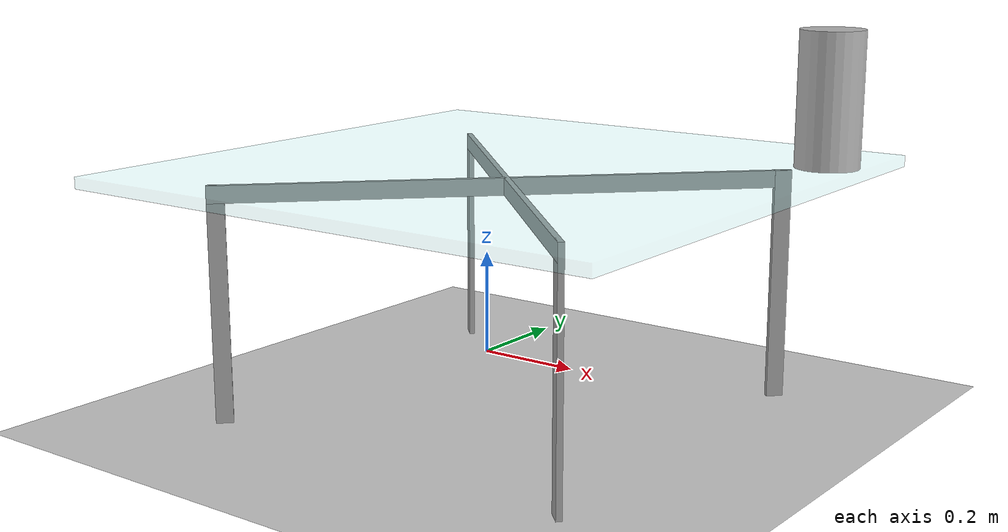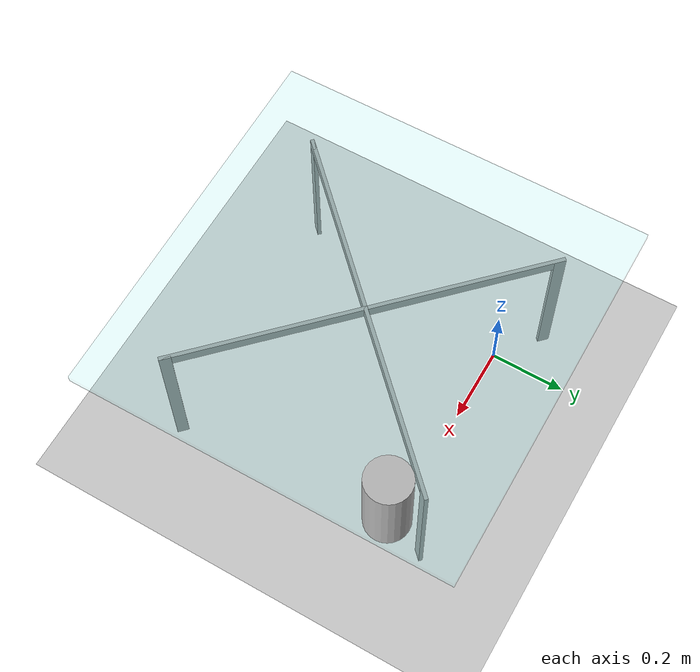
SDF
<sdf version="1.6">
 <world name="default">
  <model name="ground_plane">
   <static>1</static>
   <link name="link">
    <collision name="collision">
     <geometry><plane><normal>0 0 1</normal><size>100 100</size></plane></geometry>
     <surface><friction><ode><mu>100</mu><mu2>50</mu2></ode></friction></surface>
    </collision>
    <visual name="visual">
     <cast_shadows>0</cast_shadows>
     <geometry><plane><normal>0 0 1</normal><size>100 100</size></plane></geometry>
     <material>
      <script><uri>file://media/materials/scripts/gazebo.material</uri><name>Gazebo/Grey</name></script>
     </material>
    </visual>
   </link>
  </model>
  <model name="coffee_table">
   <link name="link_1">
    <pose>1.25379 -1.27559 0.12 0 -0 0.785398</pose>
    <inertial>
     <mass>1</mass>
     <inertia>
      <ixx>0.166667</ixx>
      <ixy>0</ixy>
      <ixz>0</ixz>
      <iyy>0.166667</iyy>
      <iyz>0</iyz>
      <izz>0.166667</izz>
     </inertia>
    </inertial>
    <visual name="visual">
     <geometry><box><size>0.01 0.03 0.41</size></box></geometry>
     <material>
      <lighting>1</lighting>
      <script><uri>file://media/materials/scripts/gazebo.material</uri><name>Gazebo/Grey</name></script>
      <shader type="pixel"><normal_map>__default__</normal_map></shader>
      <ambient>0.75 0.75 0.75 1</ambient>
      <diffuse>0.7 0.7 0.7 1</diffuse>
      <specular>0.01 0.01 0.01 1</specular>
      <emissive>0 0 0 1</emissive>
     </material>
    </visual>
    <collision name="collision">
     <geometry><box><size>0.01 0.03 0.41</size></box></geometry>
     <surface>
      <friction>
       <ode><mu>1</mu><mu2>1</mu2><fdir1>0 0 0</fdir1><slip1>0</slip1><slip2>0</slip2></ode>
       <torsional>
        <coefficient>1</coefficient>
        <patch_radius>0</patch_radius>
        <surface_radius>0</surface_radius>
        <use_patch_radius>1</use_patch_radius>
        <ode><slip>0</slip></ode>
       </torsional>
      </friction>
      <bounce><restitution_coefficient>0</restitution_coefficient><threshold>1e+06</threshold></bounce>
      <contact>
       <collide_without_contact>0</collide_without_contact>
       <collide_without_contact_bitmask>1</collide_without_contact_bitmask>
       <collide_bitmask>1</collide_bitmask>
       <ode>
        <soft_cfm>0</soft_cfm>
        <soft_erp>0.2</soft_erp>
        <kp>1e+13</kp>
        <kd>1</kd>
        <max_vel>0.01</max_vel>
        <min_depth>0</min_depth>
       </ode>
       <bullet>
        <split_impulse>1</split_impulse>
        <split_impulse_penetration_threshold>-0.01</split_impulse_penetration_threshold>
        <soft_cfm>0</soft_cfm>
        <soft_erp>0.2</soft_erp>
        <kp>1e+13</kp>
        <kd>1</kd>
       </bullet>
      </contact>
     </surface>
    </collision>
   </link>
   <link name="link_1_clone">
    <pose>0.567893 -0.589699 0.12 0 -0 0.785398</pose>
    <inertial>
     <mass>1</mass>
     <inertia>
      <ixx>0.166667</ixx>
      <ixy>0</ixy>
      <ixz>0</ixz>
      <iyy>0.166667</iyy>
      <iyz>0</iyz>
      <izz>0.166667</izz>
     </inertia>
    </inertial>
    <visual name="visual">
     <geometry><box><size>0.01 0.03 0.41</size></box></geometry>
     <material>
      <lighting>1</lighting>
      <script><uri>file://media/materials/scripts/gazebo.material</uri><name>Gazebo/Grey</name></script>
      <shader type="pixel"><normal_map>__default__</normal_map></shader>
      <ambient>0.75 0.75 0.75 1</ambient>
      <diffuse>0.7 0.7 0.7 1</diffuse>
      <specular>0.01 0.01 0.01 1</specular>
      <emissive>0 0 0 1</emissive>
     </material>
    </visual>
    <collision name="collision">
     <geometry><box><size>0.01 0.03 0.41</size></box></geometry>
     <surface>
      <friction>
       <ode><mu>1</mu><mu2>1</mu2><fdir1>0 0 0</fdir1><slip1>0</slip1><slip2>0</slip2></ode>
       <torsional>
        <coefficient>1</coefficient>
        <patch_radius>0</patch_radius>
        <surface_radius>0</surface_radius>
        <use_patch_radius>1</use_patch_radius>
        <ode><slip>0</slip></ode>
       </torsional>
      </friction>
      <bounce><restitution_coefficient>0</restitution_coefficient><threshold>1e+06</threshold></bounce>
      <contact>
       <collide_without_contact>0</collide_without_contact>
       <collide_without_contact_bitmask>1</collide_without_contact_bitmask>
       <collide_bitmask>1</collide_bitmask>
       <ode>
        <soft_cfm>0</soft_cfm>
        <soft_erp>0.2</soft_erp>
        <kp>1e+13</kp>
        <kd>1</kd>
        <max_vel>0.01</max_vel>
        <min_depth>0</min_depth>
       </ode>
       <bullet>
        <split_impulse>1</split_impulse>
        <split_impulse_penetration_threshold>-0.01</split_impulse_penetration_threshold>
        <soft_cfm>0</soft_cfm>
        <soft_erp>0.2</soft_erp>
        <kp>1e+13</kp>
        <kd>1</kd>
       </bullet>
      </contact>
     </surface>
    </collision>
   </link>
   <link name="link_1_clone_0">
    <pose>1.25379 -0.589699 0.12 0 0 -0.785398</pose>
    <inertial>
     <mass>1</mass>
     <inertia>
      <ixx>0.166667</ixx>
      <ixy>0</ixy>
      <ixz>0</ixz>
      <iyy>0.166667</iyy>
      <iyz>0</iyz>
      <izz>0.166667</izz>
     </inertia>
    </inertial>
    <visual name="visual">
     <geometry><box><size>0.01 0.03 0.41</size></box></geometry>
     <material>
      <lighting>1</lighting>
      <script><uri>file://media/materials/scripts/gazebo.material</uri><name>Gazebo/Grey</name></script>
      <shader type="pixel"><normal_map>__default__</normal_map></shader>
      <ambient>0.75 0.75 0.75 1</ambient>
      <diffuse>0.7 0.7 0.7 1</diffuse>
      <specular>0.01 0.01 0.01 1</specular>
      <emissive>0 0 0 1</emissive>
     </material>
    </visual>
    <collision name="collision">
     <geometry><box><size>0.01 0.03 0.41</size></box></geometry>
     <surface>
      <friction>
       <ode><mu>1</mu><mu2>1</mu2><fdir1>0 0 0</fdir1><slip1>0</slip1><slip2>0</slip2></ode>
       <torsional>
        <coefficient>1</coefficient>
        <patch_radius>0</patch_radius>
        <surface_radius>0</surface_radius>
        <use_patch_radius>1</use_patch_radius>
        <ode><slip>0</slip></ode>
       </torsional>
      </friction>
      <bounce><restitution_coefficient>0</restitution_coefficient><threshold>1e+06</threshold></bounce>
      <contact>
       <collide_without_contact>0</collide_without_contact>
       <collide_without_contact_bitmask>1</collide_without_contact_bitmask>
       <collide_bitmask>1</collide_bitmask>
       <ode>
        <soft_cfm>0</soft_cfm>
        <soft_erp>0.2</soft_erp>
        <kp>1e+13</kp>
        <kd>1</kd>
        <max_vel>0.01</max_vel>
        <min_depth>0</min_depth>
       </ode>
       <bullet>
        <split_impulse>1</split_impulse>
        <split_impulse_penetration_threshold>-0.01</split_impulse_penetration_threshold>
        <soft_cfm>0</soft_cfm>
        <soft_erp>0.2</soft_erp>
        <kp>1e+13</kp>
        <kd>1</kd>
       </bullet>
      </contact>
     </surface>
    </collision>
   </link>
   <link name="link_1_clone_0_clone">
    <pose>0.567893 -1.27559 0.12 0 0 -0.785398</pose>
    <inertial>
     <mass>1</mass>
     <inertia>
      <ixx>0.166667</ixx>
      <ixy>0</ixy>
      <ixz>0</ixz>
      <iyy>0.166667</iyy>
      <iyz>0</iyz>
      <izz>0.166667</izz>
     </inertia>
    </inertial>
    <visual name="visual">
     <geometry><box><size>0.01 0.03 0.41</size></box></geometry>
     <material>
      <lighting>1</lighting>
      <script><uri>file://media/materials/scripts/gazebo.material</uri><name>Gazebo/Grey</name></script>
      <shader type="pixel"><normal_map>__default__</normal_map></shader>
      <ambient>0.75 0.75 0.75 1</ambient>
      <diffuse>0.7 0.7 0.7 1</diffuse>
      <specular>0.01 0.01 0.01 1</specular>
      <emissive>0 0 0 1</emissive>
     </material>
    </visual>
    <collision name="collision">
     <geometry><box><size>0.01 0.03 0.41</size></box></geometry>
     <surface>
      <friction>
       <ode><mu>1</mu><mu2>1</mu2><fdir1>0 0 0</fdir1><slip1>0</slip1><slip2>0</slip2></ode>
       <torsional>
        <coefficient>1</coefficient>
        <patch_radius>0</patch_radius>
        <surface_radius>0</surface_radius>
        <use_patch_radius>1</use_patch_radius>
        <ode><slip>0</slip></ode>
       </torsional>
      </friction>
      <bounce><restitution_coefficient>0</restitution_coefficient><threshold>1e+06</threshold></bounce>
      <contact>
       <collide_without_contact>0</collide_without_contact>
       <collide_without_contact_bitmask>1</collide_without_contact_bitmask>
       <collide_bitmask>1</collide_bitmask>
       <ode>
        <soft_cfm>0</soft_cfm>
        <soft_erp>0.2</soft_erp>
        <kp>1e+13</kp>
        <kd>1</kd>
        <max_vel>0.01</max_vel>
        <min_depth>0</min_depth>
       </ode>
       <bullet>
        <split_impulse>1</split_impulse>
        <split_impulse_penetration_threshold>-0.01</split_impulse_penetration_threshold>
        <soft_cfm>0</soft_cfm>
        <soft_erp>0.2</soft_erp>
        <kp>1e+13</kp>
        <kd>1</kd>
       </bullet>
      </contact>
     </surface>
    </collision>
   </link>
   <link name="link_2">
    <pose>0.910839 -0.932646 0.31 0 -0 0.785398</pose>
    <inertial>
     <mass>1</mass>
     <inertia>
      <ixx>0.166667</ixx>
      <ixy>0</ixy>
      <ixz>0</ixz>
      <iyy>0.166667</iyy>
      <iyz>0</iyz>
      <izz>0.166667</izz>
     </inertia>
    </inertial>
    <visual name="visual">
     <geometry><box><size>0.01 1 0.03</size></box></geometry>
     <material>
      <lighting>1</lighting>
      <script><uri>file://media/materials/scripts/gazebo.material</uri><name>Gazebo/Grey</name></script>
      <shader type="pixel"><normal_map>__default__</normal_map></shader>
      <ambient>0.75 0.75 0.75 1</ambient>
      <diffuse>0.7 0.7 0.7 1</diffuse>
      <specular>0.01 0.01 0.01 1</specular>
      <emissive>0 0 0 1</emissive>
     </material>
    </visual>
    <collision name="collision">
     <geometry><box><size>0.01 1 0.03</size></box></geometry>
     <surface>
      <friction>
       <ode><mu>1</mu><mu2>1</mu2><fdir1>0 0 0</fdir1><slip1>0</slip1><slip2>0</slip2></ode>
       <torsional>
        <coefficient>1</coefficient>
        <patch_radius>0</patch_radius>
        <surface_radius>0</surface_radius>
        <use_patch_radius>1</use_patch_radius>
        <ode><slip>0</slip></ode>
       </torsional>
      </friction>
      <bounce><restitution_coefficient>0</restitution_coefficient><threshold>1e+06</threshold></bounce>
      <contact>
       <collide_without_contact>0</collide_without_contact>
       <collide_without_contact_bitmask>1</collide_without_contact_bitmask>
       <collide_bitmask>1</collide_bitmask>
       <ode>
        <soft_cfm>0</soft_cfm>
        <soft_erp>0.2</soft_erp>
        <kp>1e+13</kp>
        <kd>1</kd>
        <max_vel>0.01</max_vel>
        <min_depth>0</min_depth>
       </ode>
       <bullet>
        <split_impulse>1</split_impulse>
        <split_impulse_penetration_threshold>-0.01</split_impulse_penetration_threshold>
        <soft_cfm>0</soft_cfm>
        <soft_erp>0.2</soft_erp>
        <kp>1e+13</kp>
        <kd>1</kd>
       </bullet>
      </contact>
     </surface>
    </collision>
   </link>
   <link name="link_2_clone">
    <pose>0.910839 -0.932646 0.31 0 0 -0.785398</pose>
    <inertial>
     <mass>1</mass>
     <inertia>
      <ixx>0.166667</ixx>
      <ixy>0</ixy>
      <ixz>0</ixz>
      <iyy>0.166667</iyy>
      <iyz>0</iyz>
      <izz>0.166667</izz>
     </inertia>
    </inertial>
    <visual name="visual">
     <geometry><box><size>0.01 1 0.03</size></box></geometry>
     <material>
      <lighting>1</lighting>
      <script><uri>file://media/materials/scripts/gazebo.material</uri><name>Gazebo/Grey</name></script>
      <shader type="pixel"><normal_map>__default__</normal_map></shader>
      <ambient>0.75 0.75 0.75 1</ambient>
      <diffuse>0.7 0.7 0.7 1</diffuse>
      <specular>0.01 0.01 0.01 1</specular>
      <emissive>0 0 0 1</emissive>
     </material>
    </visual>
    <collision name="collision">
     <geometry><box><size>0.01 1 0.03</size></box></geometry>
     <surface>
      <friction>
       <ode><mu>1</mu><mu2>1</mu2><fdir1>0 0 0</fdir1><slip1>0</slip1><slip2>0</slip2></ode>
       <torsional>
        <coefficient>1</coefficient>
        <patch_radius>0</patch_radius>
        <surface_radius>0</surface_radius>
        <use_patch_radius>1</use_patch_radius>
        <ode><slip>0</slip></ode>
       </torsional>
      </friction>
      <bounce><restitution_coefficient>0</restitution_coefficient><threshold>1e+06</threshold></bounce>
      <contact>
       <collide_without_contact>0</collide_without_contact>
       <collide_without_contact_bitmask>1</collide_without_contact_bitmask>
       <collide_bitmask>1</collide_bitmask>
       <ode>
        <soft_cfm>0</soft_cfm>
        <soft_erp>0.2</soft_erp>
        <kp>1e+13</kp>
        <kd>1</kd>
        <max_vel>0.01</max_vel>
        <min_depth>0</min_depth>
       </ode>
       <bullet>
        <split_impulse>1</split_impulse>
        <split_impulse_penetration_threshold>-0.01</split_impulse_penetration_threshold>
        <soft_cfm>0</soft_cfm>
        <soft_erp>0.2</soft_erp>
        <kp>1e+13</kp>
        <kd>1</kd>
       </bullet>
      </contact>
     </surface>
    </collision>
   </link>
   <link name="link_4">
    <pose>0.910839 -0.932646 0.335 0 -0 0</pose>
    <inertial>
     <mass>1</mass>
     <inertia>
      <ixx>0.166667</ixx>
      <ixy>0</ixy>
      <ixz>0</ixz>
      <iyy>0.166667</iyy>
      <iyz>0</iyz>
      <izz>0.166667</izz>
     </inertia>
    </inertial>
    <visual name="visual">
     <geometry><box><size>1 1 0.02</size></box></geometry>
     <material>
      <lighting>1</lighting>
      <script><uri>file://media/materials/scripts/gazebo.material</uri><name>Gazebo/Grey</name></script>
      <shader type="pixel"><normal_map>__default__</normal_map></shader>
      <ambient>0.6 1 1 1</ambient>
      <diffuse>0.7 0.7 0.7 1</diffuse>
      <specular>0.01 0.01 0.01 1</specular>
      <emissive>0 0 0 1</emissive>
     </material>
     <transparency>0.85</transparency>
    </visual>
    <collision name="collision">
     <geometry><box><size>1 1 0.02</size></box></geometry>
     <surface>
      <friction>
       <ode><mu>1</mu><mu2>1</mu2><fdir1>0 0 0</fdir1><slip1>0</slip1><slip2>0</slip2></ode>
       <torsional>
        <coefficient>1</coefficient>
        <patch_radius>0</patch_radius>
        <surface_radius>0</surface_radius>
        <use_patch_radius>1</use_patch_radius>
        <ode><slip>0</slip></ode>
       </torsional>
      </friction>
      <bounce><restitution_coefficient>0</restitution_coefficient><threshold>1e+06</threshold></bounce>
      <contact>
       <collide_without_contact>0</collide_without_contact>
       <collide_without_contact_bitmask>1</collide_without_contact_bitmask>
       <collide_bitmask>1</collide_bitmask>
       <ode>
        <soft_cfm>0</soft_cfm>
        <soft_erp>0.2</soft_erp>
        <kp>1e+13</kp>
        <kd>1</kd>
        <max_vel>0.01</max_vel>
        <min_depth>0</min_depth>
       </ode>
       <bullet>
        <split_impulse>1</split_impulse>
        <split_impulse_penetration_threshold>-0.01</split_impulse_penetration_threshold>
        <soft_cfm>0</soft_cfm>
        <soft_erp>0.2</soft_erp>
        <kp>1e+13</kp>
        <kd>1</kd>
       </bullet>
      </contact>
     </surface>
    </collision>
   </link>
   <joint name="link_2_JOINT_0_0" type="fixed">
    <parent>link_2</parent>
    <child>link_4</child>
    <physics>
     <ode><limit><cfm>0</cfm><erp>0.2</erp></limit><suspension><cfm>0</cfm><erp>0.2</erp></suspension></ode>
    </physics>
   </joint>
   <joint name="link_2_JOINT_0" type="fixed">
    <parent>link_2</parent>
    <child>link_1</child>
    <physics>
     <ode><limit><cfm>0</cfm><erp>0.2</erp></limit><suspension><cfm>0</cfm><erp>0.2</erp></suspension></ode>
    </physics>
   </joint>
   <joint name="link_2_JOINT_1_0" type="fixed">
    <parent>link_2</parent>
    <child>link_2_clone</child>
    <physics>
     <ode><limit><cfm>0</cfm><erp>0.2</erp></limit><suspension><cfm>0</cfm><erp>0.2</erp></suspension></ode>
    </physics>
   </joint>
   <joint name="link_2_JOINT_1" type="fixed">
    <parent>link_2</parent>
    <child>link_1_clone</child>
    <physics>
     <ode><limit><cfm>0</cfm><erp>0.2</erp></limit><suspension><cfm>0</cfm><erp>0.2</erp></suspension></ode>
    </physics>
   </joint>
   <joint name="link_2_clone_JOINT_0" type="fixed">
    <parent>link_2_clone</parent>
    <child>link_4</child>
    <physics>
     <ode><limit><cfm>0</cfm><erp>0.2</erp></limit><suspension><cfm>0</cfm><erp>0.2</erp></suspension></ode>
    </physics>
   </joint>
   <joint name="link_2_clone_JOINT_2" type="fixed">
    <parent>link_2_clone</parent>
    <child>link_1_clone_0_clone</child>
    <physics>
     <ode><limit><cfm>0</cfm><erp>0.2</erp></limit><suspension><cfm>0</cfm><erp>0.2</erp></suspension></ode>
    </physics>
   </joint>
   <joint name="link_2_clone_JOINT_3" type="fixed">
    <parent>link_2_clone</parent>
    <child>link_1_clone_0</child>
    <physics>
     <ode><limit><cfm>0</cfm><erp>0.2</erp></limit><suspension><cfm>0</cfm><erp>0.2</erp></suspension></ode>
    </physics>
   </joint>
   <static>0</static>
   <pose>-0.68094 0.674766 0.084997 -0 -2e-06 0.006456</pose>
  </model>
  <model name="beer">
   <link name="link">
    <pose>0 0 0.115 0 -0 0</pose>
    <inertial>
     <mass>0.39</mass>
     <inertia><ixx>0.00058</ixx><ixy>0</ixy><ixz>0</ixz><iyy>0.00058</iyy><iyz>0</iyz><izz>0.00019</izz></inertia>
    </inertial>
    <collision name="collision">
     <geometry><cylinder><radius>0.055</radius><length>0.23</length></cylinder></geometry>
    </collision>
    <visual name="visual">
     <geometry><cylinder><radius>0.055</radius><length>0.23</length></cylinder></geometry>
     <material>
      <script>
       <uri>model://beer/materials/scripts</uri>
       <uri>model://beer/materials/textures</uri>
       <name>Beer/Diffuse</name>
      </script>
     </material>
    </visual>
   </link>
   <pose>0.676196 0.054146 0.429998 -6.8e-05 7.4e-05 -0.004225</pose>
  </model>
 </world>
</sdf>
